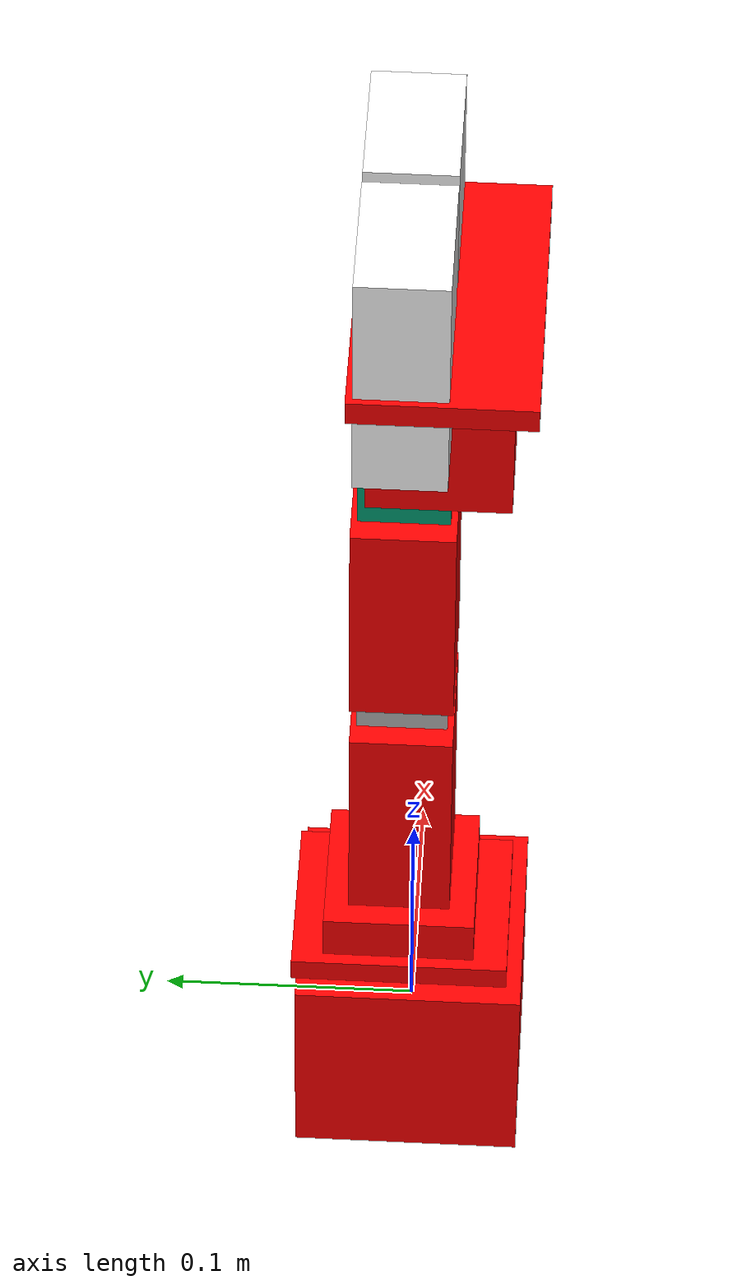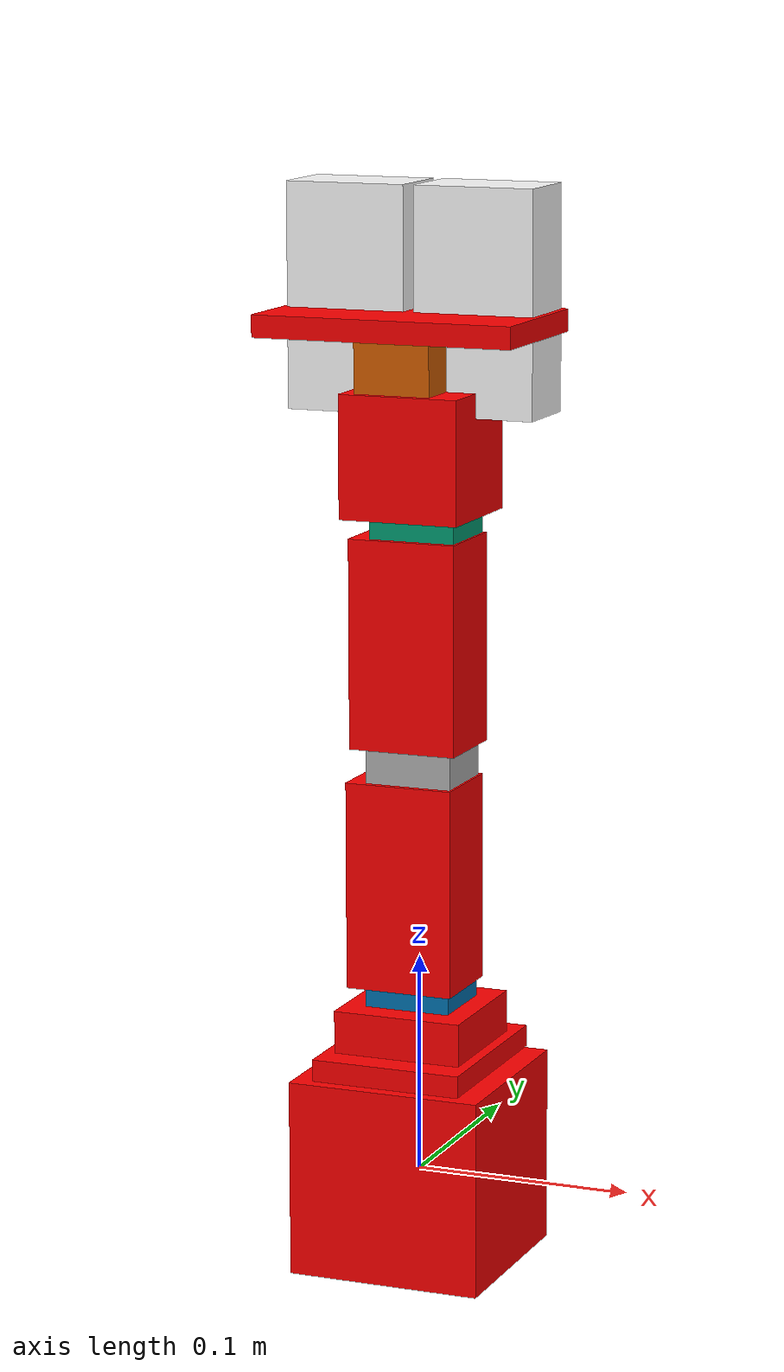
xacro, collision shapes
<?xml version="1.0"?>

<robot xmlns:xacro="http://www.ros.org/wiki/xacro" name="arm">

  <material name="red">
    <color rgba="1 0 0 1"/>
  </material>

<!-- Used for fixing robot-->
  <link name="world"/>
  <joint name="base_link_joint" type="fixed">
      <origin rpy="0.0 0.0 0.0" xyz="0 0 0"/>
      <parent link="world"/>
      <child link="base_link"/>
  </joint>

  <link name="base_link">
    <visual>
      <geometry>
        <mesh filename="package://arm_gazebo/meshes/base_link.stl" scale="0.001 0.001 0.001"/>
      </geometry>
      <origin rpy="0 0 0" xyz="0 0 0"/>
      <material name="red"/>
    </visual>
    <collision>
      <geometry>
        <box size="0.09 0.09 0.09"/> <!-- Dimensioni della box -->
      </geometry>
      <origin rpy="0 0 0" xyz="0 0 0.003"/>
    </collision>
    <inertial>
      <mass value="0.1"/>
      <inertia ixx="1.06682889e+08" ixy="0.0" ixz="0.0" iyy="9.92165844e+07" iyz="0.0" izz="1.26939175e+08"/>
    </inertial>
  </link>

  <joint name="base_1_2" type="fixed">
    <parent link="base_link"/>
    <child link="base_turn"/>
    <origin xyz="-0.0011 -0.011 0.05"/>
  </joint>

  <link name="base_turn">
    <visual>
      <geometry>
        <mesh filename="package://arm_gazebo/meshes/base_turn.stl" scale="0.001 0.001 0.001"/>
      </geometry>
      <origin rpy="0 0 0" xyz="0 0 0"/>
      <material name="red"/>
    </visual>
    <collision>
      <geometry>
          <box size="0.07 0.086 0.01"/> <!-- Dimensioni della box -->
        </geometry>
      <origin rpy="0 0 0" xyz="0 0.015 0.003"/>
    </collision>
    <inertial>
      <mass value="0.1"/>
      <inertia ixx="1.35223008e+07" ixy="0.0" ixz="0.0" iyy="8.13814925e+06" iyz="0.0" izz="2.14903814e+07"/>
    </inertial>
  </link>

  <joint name="j0" type="revolute">
    <parent link="base_turn"/>
    <child link="base_turn_rot"/>
    <origin xyz="-0.0 0.0155 0.013" rpy = "0 0 -1.57"/>
    <axis xyz="0 0 1" />
    <limit effort="300" velocity="0.1" lower="-2.57" upper="2.57"/>
  </joint>

  <link name="base_turn_rot">
    <visual>
      <geometry>
        <mesh filename="package://arm_gazebo/meshes/base_turn_table_rot.stl" scale="0.001 0.001 0.001"/>
      </geometry>
      <material name="red"/>
    </visual>
    <collision>
      <geometry>
          <box size="0.06 0.06 0.023"/> <!-- Dimensioni della box -->
        </geometry>
      <origin rpy="0 0 0" xyz="0 0 0.003"/>
    </collision>

    <inertial>
      <mass value="0.1"/>
      <inertia ixx="0.001" ixy="0.0" ixz="0.0" iyy="0.001" iyz="0.0" izz="0.001"/>
    </inertial>
  </link>

  <joint name="base_turn_rot_dyn2" type="fixed">
    <parent link="base_turn_rot"/>
    <child link="dyn2"/>
    <origin xyz="0 0 0.0385" rpy="0 1.57 1.57 "/>
  </joint>

  <link name="dyn2">
    <visual>
      <geometry>
        <mesh filename="package://arm_gazebo/meshes/dyn.stl" scale="0.01 0.01 0.01"/>
      </geometry>

      <origin rpy="0 0 0" xyz="0 0 0"/>
    </visual>
    <collision>
      <geometry>
          <box size="0.055 0.035 0.04"/> <!-- Dimensioni della box -->
        </geometry>
      <origin rpy="0 0 0" xyz="0.011 0 0"/>
    </collision>
     <inertial>
      <mass value="0.1"/>
      <inertia ixx="6.90013881e-05" ixy="0.0" ixz="0.0" iyy="1.24554875e-04" iyz="0.0" izz="1.04295793e-04"/>
    </inertial>
  </link>

  <joint name="j1" type="revolute">
    <parent link="dyn2"/>
    <child link="dyn2_r"/>
    <origin xyz="0 0 0.0" rpy="0 0 0"/>
    <axis xyz="0 0 1" />
    <limit effort="300" velocity="0.1" lower="-3.14" upper="3.14"/>
  </joint>

  <link name="dyn2_r">

  </link>

  <joint name="dyn2_f4" type="fixed">
    <parent link="dyn2_r"/>
    <child link="f4"/>
    <origin xyz="-0.047 0.0 -0.003" rpy="0 1.57 1.57"/>
  </joint>

  <link name="f4">
    <visual>
      <geometry>
        <mesh filename="package://arm_gazebo/meshes/f4_n_f3.stl" scale="0.001 0.001 0.001"/>
      </geometry>
      <origin rpy="0 0 0" xyz="0 0 0"/>
      <material name="red"/>
    </visual>
    <collision>
      <geometry>
          <box size="0.05 0.095 0.04"/> <!--  Dimensioni della box -->
        </geometry>
      <origin rpy="0 0 0" xyz="0 -0.015 0"/>
    </collision>
     <inertial>
      <mass value="0.1"/>
      <inertia ixx="6.90013881e-05" ixy="0.0" ixz="0.0" iyy="1.24554875e-04" iyz="0.0" izz="1.04295793e-04"/>
    </inertial>
  </link>

  <joint name="d4_dyn3" type="fixed">
    <parent link="f4"/>
    <child link="dyn3"/>
    <origin xyz="-0.004 0.0645 0 " rpy="-1.57 3.14 1.57"/>
  </joint>

  <link name="dyn3">
    <visual>
      <geometry>
        <mesh filename="package://arm_gazebo/meshes/dyn.stl" scale="0.01 0.01 0.01"/>
      </geometry>
      <origin rpy="0 0 0" xyz="0 0 0"/>
    </visual>
    <collision>
      <geometry>
           <box size="0.055 0.035 0.04"/> <!--Dimensioni della box -->
        </geometry>
      <origin rpy="0 0 0" xyz="0.011 0 0"/>
    </collision>
     <inertial>
      <mass value="0.1"/>
      <inertia ixx="6.90013881e-05" ixy="0.0" ixz="0.0" iyy="1.24554875e-04" iyz="0.0" izz="1.04295793e-04"/>
    </inertial>
  </link>

  <joint name="j2" type="revolute">
    <parent link="dyn3"/>
    <child link="dyn3_r"/>
    <origin xyz="0 0 0.0" rpy="0 0 0"/>
    <axis xyz="0 0 1" />
    <limit effort="300" velocity="0.1" lower="-3.14" upper="3.14"/>
  </joint>

 <link name="dyn3_r">

  </link>

  <joint name="dyn3_f5" type="fixed">
    <parent link="dyn3_r"/>
    <child link="f5"/>
    <origin xyz="-0.046 -0.0 -0.002" rpy="1.57 1.57 3.1415 "/>
  </joint>

  <link name="f5">
    <visual>
      <geometry>
        <mesh filename="package://arm_gazebo/meshes/f4_n_f3.stl" scale="0.001 0.001 0.001"/>
      </geometry>
      <origin rpy="0 0 0" xyz="0 0 0"/>
      <material name="red"/>
    </visual>
    <collision>
      <geometry>
           <box size="0.05 0.095 0.04"/> <!--Dimensioni della box -->
        </geometry>
      <origin rpy="0 0 0" xyz="0 -0.015 0"/>
    </collision>

    <inertial>
      <mass value="0.1"/>
  <inertia ixx="0.001" ixy="0.0" ixz="0.0" iyy="0.001" iyz="0.0" izz="0.001"/>    </inertial>
  </link>

  <joint name="f5_dyn4" type="fixed">
    <parent link="f5"/>
    <child link="dyn4"/>
    <origin xyz="-0.004 0.065 -0.0" rpy="-1.57 3.1415 1.57 "/>
  </joint>

  <link name="dyn4">
    <visual>
      <geometry>
        <mesh filename="package://arm_gazebo/meshes/dyn.stl" scale="0.01 0.01 0.01"/>
      </geometry>

      <origin rpy="0 0 0" xyz="0 0 0"/>
    </visual>
    <collision>
      <geometry>
          <box size="0.055 0.035 0.04"/> <!-- Dimensioni della box -->
        </geometry>
      <origin rpy="0 0 0" xyz="0.011 0 0"/>
    </collision>

    <inertial>
      <mass value="0.1"/>
      <inertia ixx="6.90013881e-05" ixy="0.0" ixz="0.0" iyy="1.24554875e-04" iyz="0.0" izz="1.04295793e-04"/>
    </inertial>
  </link>

  <joint name="j3" type="revolute">
    <parent link="dyn4"/>
    <child link="dyn4_r"/>
    <origin xyz="0 0 0.0" rpy="0 0 0"/>
    <axis xyz="0 0 1" />
    <limit effort="300" velocity="0.1" lower="-3.14" upper="3.14"/>
  </joint>

  <link name="dyn4_r">

  </link>

  <joint name="f5_wrist" type="fixed">
    <parent link="dyn4_r"/>
    <child link="wrist"/>
    <origin xyz="-0.017 -0.013 0.003" rpy="1.57 1.57 -1.57"/>
  </joint>

  <link name="wrist">
    <visual>
      <geometry>
        <mesh filename="package://arm_gazebo/meshes/wrist.stl" scale="0.001 0.001 0.001"/>
      </geometry>
      <origin rpy="0 0 0" xyz="0 0 0"/>
      <material name="red"/>
    </visual>
    <collision>
      <geometry>
         <box size="0.055 0.055 0.055"/> <!--Dimensioni della box -->
      </geometry>
      <origin rpy="0 0 0" xyz="0 0 -0.01"/>
    </collision>

     <inertial>
      <mass value="0.1"/>
      <inertia ixx="6.90013881e-05" ixy="0.0" ixz="0.0" iyy="1.24554875e-04" iyz="0.0" izz="1.04295793e-04"/>
    </inertial>
  </link>

  <joint name="wrist_dyn5" type="fixed">
    <parent link="wrist"/>
    <child link="dyn5"/>
    <origin xyz="0.0038 -0.013 0.0275" rpy="0 0 1.57"/>
  </joint>

    <link name="dyn5">
    <visual>
      <geometry>
        <mesh filename="package://arm_gazebo/meshes/dyn.stl" scale="0.01 0.01 0.01"/>
      </geometry>
      <origin rpy="0 0 0" xyz="0 0 0"/>
    </visual>
    <collision>
      <geometry>
          <box size="0.055 0.035 0.044"/> <!-- Dimensioni della box -->
        </geometry>
      <origin rpy="0 0 0" xyz="0.01 0 0"/>
    </collision>

    <inertial>
      <mass value="0.1"/>
      <inertia ixx="6.90013881e-05" ixy="0.0" ixz="0.0" iyy="1.24554875e-04" iyz="0.0" izz="1.04295793e-04"/>
    </inertial>
  </link>

  <joint name="dyn5_dyn5_r" type="fixed">
    <parent link="dyn5"/>
    <child link="dyn5_r"/>
    <origin xyz="0 0 0.0" rpy="0 0 0"/>
    <axis xyz="0 0 1" />
    <limit effort="300" velocity="0.1" lower="-3.14" upper="3.14"/>
  </joint>

  <link name="dyn5_r">

  </link>

  <joint name="wrist_rotate_dyn5" type="fixed">
    <parent link="dyn5_r"/>
    <child link="crawer_base"/>
    <origin xyz="0.015 0 0.019" rpy="0 0 1.57"/>
  </joint>

  <link name="crawer_base">
    <visual>
      <geometry>
        <mesh filename="package://arm_gazebo/meshes/the_crawer_base.stl" scale="0.001 0.001 0.001"/>
      </geometry>
      <origin rpy="0 0 0" xyz="0 0 0"/>
      <material name="red"/>
    </visual>
    <collision>
      <geometry>
           <box size="0.12 0.07 0.01"/> <!--Dimensioni della box -->
        </geometry>
      <origin rpy="0 0 0" xyz="0 0 0"/>
    </collision>

    <inertial>
      <mass value="0.1"/>
      <inertia ixx="6.90013881e-05" ixy="0.0" ixz="0.0" iyy="1.24554875e-04" iyz="0.0" izz="1.04295793e-04"/>
    </inertial>
  </link>

  <joint name="crawer_base_crawer_left" type="fixed">
    <parent link="crawer_base"/>
    <child link="crawer_left"/>
    <origin xyz="-0.03 0.015 0.01" rpy="0 -1.57 0"/>
  </joint>

  <link name="crawer_left">
    <visual>
      <geometry>
        <mesh filename="package://arm_gazebo/meshes/the_crawer.stl" scale="0.001 0.001 0.001"/>
      </geometry>
      <origin rpy="0 0 0" xyz="0 0 0"/>
      <material name="white">
        <color rgba="1 1 1 1"/>
      </material>
    </visual>
    <collision>
      <geometry>
           <box size="0.1 0.035 0.055"/> <!--Dimensioni della box -->
        </geometry>
      <origin rpy="0 0 0" xyz="0 0 0"/>
    </collision>

    <inertial>
      <mass value="0.1"/>
      <inertia ixx="6.90013881e-05" ixy="0.0" ixz="0.0" iyy="1.24554875e-04" iyz="0.0" izz="1.04295793e-04"/>
    </inertial>
  </link>

  <joint name="crawer_base_crawer_right" type="fixed">
    <parent link="crawer_base"/>
    <child link="crawer_right"/>
    <origin xyz="0.03 0.015 0.01" rpy="3.1415 -1.57 0"/>
  </joint>

  <link name="crawer_right">
    <visual>
      <geometry>
        <mesh filename="package://arm_gazebo/meshes/the_crawer.stl" scale="0.001 0.001 0.001"/>
      </geometry>
      <origin rpy="0 0 0" xyz="0 0 0"/>
      <material name="white">
        <color rgba="1 1 1 1"/>
      </material>
    </visual>
    <collision>
      <geometry>
           <box size="0.1 0.035 0.055"/> <!--Dimensioni della box -->
        </geometry>
      <origin rpy="0 0 0" xyz="0 0 0"/>
    </collision>

    <inertial>
      <mass value="0.1"/>
      <inertia ixx="6.90013881e-05" ixy="0.0" ixz="0.0" iyy="1.24554875e-04" iyz="0.0" izz="1.04295793e-04"/>
    </inertial>
  </link>

  <joint name="camera_joint" type="fixed">
      <parent link="base_link"/>
      <child link="camera_link"/>
      <origin xyz="0.0 0 0.00" rpy="0.0 0.0 1.57"/>
  </joint>

  <link name="camera_link">
      <visual>
          <geometry>
              <box size="0.0000010 0.00000003 0.00000003"/>
          </geometry>
          <material name="red"/>
      </visual>
  </link>

<!-- to enable the controllers in gazebo -->
  <gazebo>
    <plugin filename="ign_ros2_control-system" name="ign_ros2_control::IgnitionROS2ControlPlugin">
    <parameters>$(find arm_control)/config/arm_control.yaml</parameters>
    <controller_manager_prefix_node_name>controller_manager</controller_manager_prefix_node_name>
    </plugin>
  </gazebo>

<!-- creation of the joints with the position interface -->
  <xacro:include filename="$(find arm_description)/urdf/arm_hardware_interface.xacro"/>
  <ros2_control name="HardwareInterface_Ignition" type="system">

    <!-- to enable the hardware interface -->
    <hardware>
    <plugin>ign_ros2_control/IgnitionSystem</plugin>
    </hardware>

    <xacro:joint_ros2_control name="j0" initial_pos="0.0"/>
    <xacro:joint_ros2_control name="j1" initial_pos="0.0"/>
    <xacro:joint_ros2_control name="j2" initial_pos="0.0"/>
    <xacro:joint_ros2_control name="j3" initial_pos="0.0"/>

  </ros2_control>

  <xacro:include filename="$(find arm_gazebo)/urdf/arm_camera.xacro"/>

  <xacro:camera_ros2_control/>

</robot>
